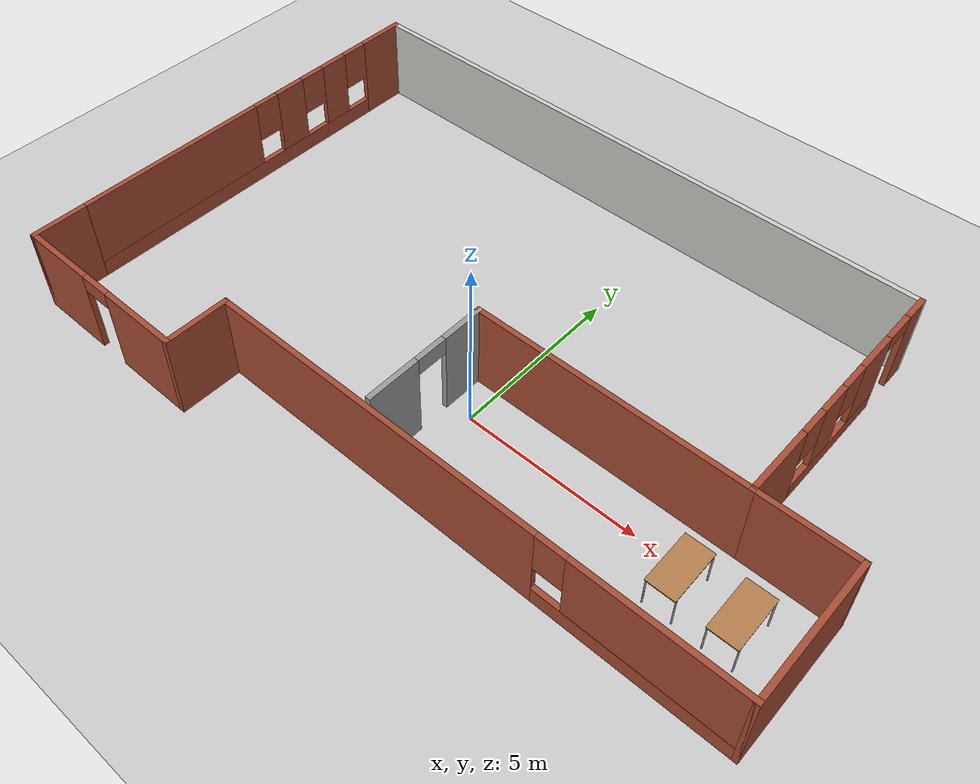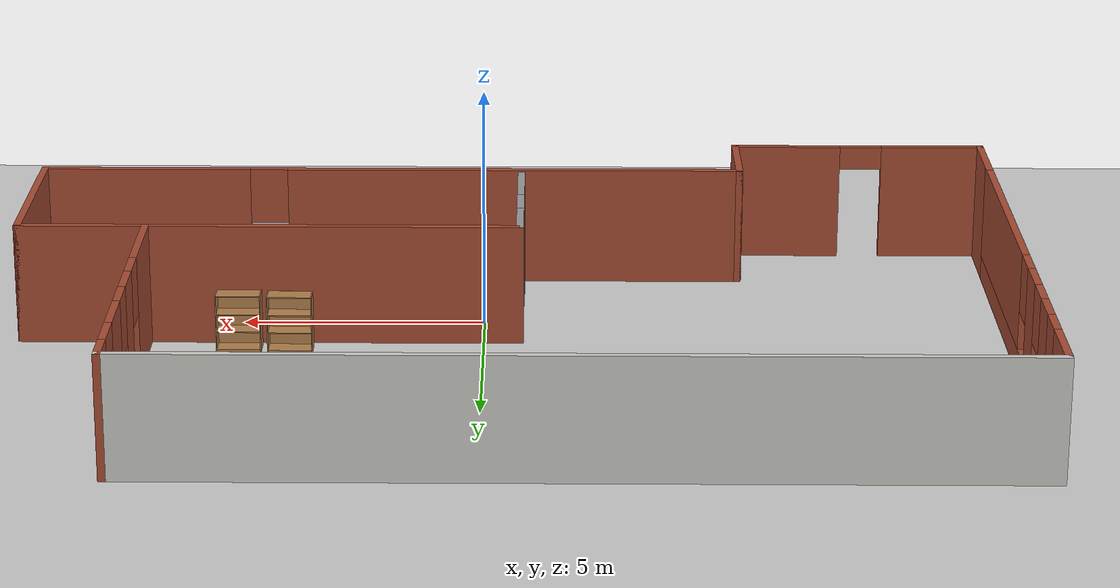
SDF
<sdf version="1.6">
 <world name="default">
  <model name="ground_plane">
   <static>1</static>
   <link name="link">
    <collision name="collision">
     <geometry><plane><normal>0 0 1</normal><size>100 100</size></plane></geometry>
     <surface>
      <contact><collide_bitmask>65535</collide_bitmask></contact>
      <friction><ode><mu>100</mu><mu2>50</mu2></ode></friction>
     </surface>
    </collision>
    <visual name="visual">
     <cast_shadows>0</cast_shadows>
     <geometry><plane><normal>0 0 1</normal><size>100 100</size></plane></geometry>
     <material>
      <script><uri>file://media/materials/scripts/gazebo.material</uri><name>Gazebo/Grey</name></script>
     </material>
    </visual>
   </link>
  </model>
  <model name="model_0">
   <pose>-0.6336 1.95139 0 0 -0 0</pose>
   <link name="Wall_10">
    <pose>7.50018 2.8 0 0 -0 1.57075</pose>
    <visual name="Wall_10_Visual_0">
     <pose>-2.68442 0 1.25 0 -0 0</pose>
     <geometry><box><size>2.09065 0.15 2.5</size></box></geometry>
     <material>
      <script><uri>file://media/materials/scripts/gazebo.material</uri><name>Gazebo/Bricks</name></script>
      <ambient>0.435294 0.796078 0.67451 1</ambient>
     </material>
     <meta><layer>0</layer></meta>
    </visual>
    <collision name="Wall_10_Collision_0">
     <geometry><box><size>2.09065 0.15 2.5</size></box></geometry>
     <pose>-2.68442 0 1.25 0 -0 0</pose>
    </collision>
    <visual name="Wall_10_Visual_1">
     <pose>3.35058 0 1.25 0 -0 0</pose>
     <geometry><box><size>0.758336 0.15 2.5</size></box></geometry>
     <material>
      <script><uri>file://media/materials/scripts/gazebo.material</uri><name>Gazebo/Bricks</name></script>
      <ambient>0.435294 0.796078 0.67451 1</ambient>
     </material>
     <meta><layer>0</layer></meta>
    </visual>
    <collision name="Wall_10_Collision_1">
     <geometry><box><size>0.758336 0.15 2.5</size></box></geometry>
     <pose>3.35058 0 1.25 0 -0 0</pose>
    </collision>
    <visual name="Wall_10_Visual_2">
     <pose>0.216155 0 0.25 0 -0 0</pose>
     <geometry><box><size>3.71051 0.15 0.5</size></box></geometry>
     <material>
      <script><uri>file://media/materials/scripts/gazebo.material</uri><name>Gazebo/Bricks</name></script>
      <ambient>0.435294 0.796078 0.67451 1</ambient>
     </material>
     <meta><layer>0</layer></meta>
    </visual>
    <collision name="Wall_10_Collision_2">
     <geometry><box><size>3.71051 0.15 0.5</size></box></geometry>
     <pose>0.216155 0 0.25 0 -0 0</pose>
    </collision>
    <visual name="Wall_10_Visual_3">
     <pose>-0.378984 0 1.5 0 -0 0</pose>
     <geometry><box><size>0.920234 0.15 2</size></box></geometry>
     <material>
      <script><uri>file://media/materials/scripts/gazebo.material</uri><name>Gazebo/Bricks</name></script>
      <ambient>0.435294 0.796078 0.67451 1</ambient>
     </material>
     <meta><layer>0</layer></meta>
    </visual>
    <collision name="Wall_10_Collision_3">
     <geometry><box><size>0.920234 0.15 2</size></box></geometry>
     <pose>-0.378984 0 1.5 0 -0 0</pose>
    </collision>
    <visual name="Wall_10_Visual_4">
     <pose>1.47627 0 1.5 0 -0 0</pose>
     <geometry><box><size>1.19028 0.15 2</size></box></geometry>
     <material>
      <script><uri>file://media/materials/scripts/gazebo.material</uri><name>Gazebo/Bricks</name></script>
      <ambient>0.435294 0.796078 0.67451 1</ambient>
     </material>
     <meta><layer>0</layer></meta>
    </visual>
    <collision name="Wall_10_Collision_4">
     <geometry><box><size>1.19028 0.15 2</size></box></geometry>
     <pose>1.47627 0 1.5 0 -0 0</pose>
    </collision>
    <visual name="Wall_10_Visual_5">
     <pose>-1.2391 0 1.9 0 -0 0</pose>
     <geometry><box><size>0.8 0.15 1.2</size></box></geometry>
     <material>
      <script><uri>file://media/materials/scripts/gazebo.material</uri><name>Gazebo/Bricks</name></script>
      <ambient>0.435294 0.796078 0.67451 1</ambient>
     </material>
     <meta><layer>0</layer></meta>
    </visual>
    <collision name="Wall_10_Collision_5">
     <geometry><box><size>0.8 0.15 1.2</size></box></geometry>
     <pose>-1.2391 0 1.9 0 -0 0</pose>
    </collision>
    <visual name="Wall_10_Visual_6">
     <pose>0.481133 0 1.9 0 -0 0</pose>
     <geometry><box><size>0.8 0.15 1.2</size></box></geometry>
     <material>
      <script><uri>file://media/materials/scripts/gazebo.material</uri><name>Gazebo/Bricks</name></script>
      <ambient>0.435294 0.796078 0.67451 1</ambient>
     </material>
     <meta><layer>0</layer></meta>
    </visual>
    <collision name="Wall_10_Collision_6">
     <geometry><box><size>0.8 0.15 1.2</size></box></geometry>
     <pose>0.481133 0 1.9 0 -0 0</pose>
    </collision>
    <visual name="Wall_10_Visual_7">
     <pose>2.52141 0 2.25 0 -0 0</pose>
     <geometry><box><size>0.9 0.15 0.5</size></box></geometry>
     <material>
      <script><uri>file://media/materials/scripts/gazebo.material</uri><name>Gazebo/Bricks</name></script>
      <ambient>0.435294 0.796078 0.67451 1</ambient>
     </material>
     <meta><layer>0</layer></meta>
    </visual>
    <collision name="Wall_10_Collision_7">
     <geometry><box><size>0.9 0.15 0.5</size></box></geometry>
     <pose>2.52141 0 2.25 0 -0 0</pose>
    </collision>
   </link>
   <link name="Wall_11">
    <collision name="Wall_11_Collision">
     <geometry><box><size>17.75 0.15 2.5</size></box></geometry>
     <pose>0 0 1.25 0 -0 0</pose>
    </collision>
    <visual name="Wall_11_Visual">
     <pose>0 0 1.25 0 -0 0</pose>
     <geometry><box><size>17.75 0.15 2.5</size></box></geometry>
     <material>
      <script><uri>file://media/materials/scripts/gazebo.material</uri><name>Gazebo/CeilingTiled</name></script>
      <ambient>0.435294 0.796078 0.67451 1</ambient>
     </material>
     <meta><layer>0</layer></meta>
    </visual>
    <pose>-1.29964 6.45474 0 0 -0 3.14159</pose>
   </link>
   <link name="Wall_12">
    <pose>-10.0998 0.799998 0 0 0 -1.57083</pose>
    <visual name="Wall_12_Visual_0">
     <pose>-4.98376 0 1.25 0 -0 0</pose>
     <geometry><box><size>1.49197 0.15 2.5</size></box></geometry>
     <material>
      <script><uri>file://media/materials/scripts/gazebo.material</uri><name>Gazebo/Bricks</name></script>
      <ambient>1 1 1 1</ambient>
     </material>
     <meta><layer>0</layer></meta>
    </visual>
    <collision name="Wall_12_Collision_0">
     <geometry><box><size>1.49197 0.15 2.5</size></box></geometry>
     <pose>-4.98376 0 1.25 0 -0 0</pose>
    </collision>
    <visual name="Wall_12_Visual_1">
     <pose>0.745985 0 0.25 0 -0 0</pose>
     <geometry><box><size>9.96752 0.15 0.5</size></box></geometry>
     <material>
      <script><uri>file://media/materials/scripts/gazebo.material</uri><name>Gazebo/Bricks</name></script>
      <ambient>1 1 1 1</ambient>
     </material>
     <meta><layer>0</layer></meta>
    </visual>
    <collision name="Wall_12_Collision_1">
     <geometry><box><size>9.96752 0.15 0.5</size></box></geometry>
     <pose>0.745985 0 0.25 0 -0 0</pose>
    </collision>
    <visual name="Wall_12_Visual_2">
     <pose>-2.99602 0 1.5 0 -0 0</pose>
     <geometry><box><size>0.88351 0.15 2</size></box></geometry>
     <material>
      <script><uri>file://media/materials/scripts/gazebo.material</uri><name>Gazebo/Bricks</name></script>
      <ambient>1 1 1 1</ambient>
     </material>
     <meta><layer>0</layer></meta>
    </visual>
    <collision name="Wall_12_Collision_2">
     <geometry><box><size>0.88351 0.15 2</size></box></geometry>
     <pose>-2.99602 0 1.5 0 -0 0</pose>
    </collision>
    <visual name="Wall_12_Visual_3">
     <pose>-1.27243 0 1.5 0 -0 0</pose>
     <geometry><box><size>0.963678 0.15 2</size></box></geometry>
     <material>
      <script><uri>file://media/materials/scripts/gazebo.material</uri><name>Gazebo/Bricks</name></script>
      <ambient>1 1 1 1</ambient>
     </material>
     <meta><layer>0</layer></meta>
    </visual>
    <collision name="Wall_12_Collision_3">
     <geometry><box><size>0.963678 0.15 2</size></box></geometry>
     <pose>-1.27243 0 1.5 0 -0 0</pose>
    </collision>
    <visual name="Wall_12_Visual_4">
     <pose>2.86958 0 1.5 0 -0 0</pose>
     <geometry><box><size>5.72034 0.15 2</size></box></geometry>
     <material>
      <script><uri>file://media/materials/scripts/gazebo.material</uri><name>Gazebo/Bricks</name></script>
      <ambient>1 1 1 1</ambient>
     </material>
     <meta><layer>0</layer></meta>
    </visual>
    <collision name="Wall_12_Collision_4">
     <geometry><box><size>5.72034 0.15 2</size></box></geometry>
     <pose>2.86958 0 1.5 0 -0 0</pose>
    </collision>
    <visual name="Wall_12_Visual_5">
     <pose>-3.83778 0 1.9 0 -0 0</pose>
     <geometry><box><size>0.8 0.15 1.2</size></box></geometry>
     <material>
      <script><uri>file://media/materials/scripts/gazebo.material</uri><name>Gazebo/Bricks</name></script>
      <ambient>1 1 1 1</ambient>
     </material>
     <meta><layer>0</layer></meta>
    </visual>
    <collision name="Wall_12_Collision_5">
     <geometry><box><size>0.8 0.15 1.2</size></box></geometry>
     <pose>-3.83778 0 1.9 0 -0 0</pose>
    </collision>
    <visual name="Wall_12_Visual_6">
     <pose>-2.15427 0 1.9 0 -0 0</pose>
     <geometry><box><size>0.8 0.15 1.2</size></box></geometry>
     <material>
      <script><uri>file://media/materials/scripts/gazebo.material</uri><name>Gazebo/Bricks</name></script>
      <ambient>1 1 1 1</ambient>
     </material>
     <meta><layer>0</layer></meta>
    </visual>
    <collision name="Wall_12_Collision_6">
     <geometry><box><size>0.8 0.15 1.2</size></box></geometry>
     <pose>-2.15427 0 1.9 0 -0 0</pose>
    </collision>
    <visual name="Wall_12_Visual_7">
     <pose>-0.390589 0 1.9 0 -0 0</pose>
     <geometry><box><size>0.8 0.15 1.2</size></box></geometry>
     <material>
      <script><uri>file://media/materials/scripts/gazebo.material</uri><name>Gazebo/Bricks</name></script>
      <ambient>1 1 1 1</ambient>
     </material>
     <meta><layer>0</layer></meta>
    </visual>
    <collision name="Wall_12_Collision_7">
     <geometry><box><size>0.8 0.15 1.2</size></box></geometry>
     <pose>-0.390589 0 1.9 0 -0 0</pose>
    </collision>
   </link>
   <link name="Wall_13">
    <collision name="Wall_13_Collision">
     <geometry><box><size>1.75 0.15 2.5</size></box></geometry>
     <pose>0 0 1.25 0 -0 0</pose>
    </collision>
    <visual name="Wall_13_Visual">
     <pose>0 0 1.25 0 -0 0</pose>
     <geometry><box><size>1.75 0.15 2.5</size></box></geometry>
     <material>
      <script><uri>file://media/materials/scripts/gazebo.material</uri><name>Gazebo/Bricks</name></script>
      <ambient>1 1 1 1</ambient>
     </material>
     <meta><layer>0</layer></meta>
    </visual>
    <pose>-10.1 -5.65475 0 0 0 -1.5708</pose>
   </link>
   <link name="Wall_14">
    <pose>-7.425 -6.45475 0 0 -0 0</pose>
    <visual name="Wall_14_Visual_0">
     <pose>-1.63288 0 1.25 0 -0 0</pose>
     <geometry><box><size>2.23424 0.15 2.5</size></box></geometry>
     <material>
      <script><uri>file://media/materials/scripts/gazebo.material</uri><name>Gazebo/Bricks</name></script>
      <ambient>1 1 1 1</ambient>
     </material>
     <meta><layer>0</layer></meta>
    </visual>
    <collision name="Wall_14_Collision_0">
     <geometry><box><size>2.23424 0.15 2.5</size></box></geometry>
     <pose>-1.63288 0 1.25 0 -0 0</pose>
    </collision>
    <visual name="Wall_14_Visual_1">
     <pose>1.56712 0 1.25 0 -0 0</pose>
     <geometry><box><size>2.36576 0.15 2.5</size></box></geometry>
     <material>
      <script><uri>file://media/materials/scripts/gazebo.material</uri><name>Gazebo/Bricks</name></script>
      <ambient>1 1 1 1</ambient>
     </material>
     <meta><layer>0</layer></meta>
    </visual>
    <collision name="Wall_14_Collision_1">
     <geometry><box><size>2.36576 0.15 2.5</size></box></geometry>
     <pose>1.56712 0 1.25 0 -0 0</pose>
    </collision>
    <visual name="Wall_14_Visual_2">
     <pose>-0.065763 0 2.25 0 -0 0</pose>
     <geometry><box><size>0.9 0.15 0.5</size></box></geometry>
     <material>
      <script><uri>file://media/materials/scripts/gazebo.material</uri><name>Gazebo/Bricks</name></script>
      <ambient>1 1 1 1</ambient>
     </material>
     <meta><layer>0</layer></meta>
    </visual>
    <collision name="Wall_14_Collision_2">
     <geometry><box><size>0.9 0.15 0.5</size></box></geometry>
     <pose>-0.065763 0 2.25 0 -0 0</pose>
    </collision>
   </link>
   <link name="Wall_15">
    <collision name="Wall_15_Collision">
     <geometry><box><size>1.9 0.15 2.5</size></box></geometry>
     <pose>0 0 1.25 0 -0 0</pose>
    </collision>
    <visual name="Wall_15_Visual">
     <pose>0 0 1.25 0 -0 0</pose>
     <geometry><box><size>1.9 0.15 2.5</size></box></geometry>
     <material>
      <script><uri>file://media/materials/scripts/gazebo.material</uri><name>Gazebo/Bricks</name></script>
      <ambient>1 1 1 1</ambient>
     </material>
     <meta><layer>0</layer></meta>
    </visual>
    <pose>-4.75 -5.57975 0 0 -0 1.5708</pose>
   </link>
   <link name="Wall_19">
    <collision name="Wall_19_Collision">
     <geometry><box><size>7.75 0.15 2.5</size></box></geometry>
     <pose>0 0 1.25 0 -0 0</pose>
    </collision>
    <visual name="Wall_19_Visual">
     <pose>0 0 1.25 0 -0 0</pose>
     <geometry><box><size>7.75 0.15 2.5</size></box></geometry>
     <material>
      <script><uri>file://media/materials/scripts/gazebo.material</uri><name>Gazebo/Bricks</name></script>
      <ambient>0.435294 0.796078 0.67451 1</ambient>
     </material>
     <meta><layer>0</layer></meta>
    </visual>
    <pose>3.7 -0.854748 0 0 -0 3.14159</pose>
   </link>
   <link name="Wall_20">
    <pose>-0.099999 -2.65475 0 0 0 -1.5708</pose>
    <visual name="Wall_20_Visual_0">
     <pose>-1.22543 0 1.25 0 -0 0</pose>
     <geometry><box><size>1.29914 0.15 2.5</size></box></geometry>
     <material>
      <script><uri>file://media/materials/scripts/gazebo.material</uri><name>Gazebo/Grey</name></script>
      <ambient>1 1 1 1</ambient>
     </material>
     <meta><layer>0</layer></meta>
    </visual>
    <collision name="Wall_20_Collision_0">
     <geometry><box><size>1.29914 0.15 2.5</size></box></geometry>
     <pose>-1.22543 0 1.25 0 -0 0</pose>
    </collision>
    <visual name="Wall_20_Visual_1">
     <pose>1.09957 0 1.25 0 -0 0</pose>
     <geometry><box><size>1.55086 0.15 2.5</size></box></geometry>
     <material>
      <script><uri>file://media/materials/scripts/gazebo.material</uri><name>Gazebo/Grey</name></script>
      <ambient>1 1 1 1</ambient>
     </material>
     <meta><layer>0</layer></meta>
    </visual>
    <collision name="Wall_20_Collision_1">
     <geometry><box><size>1.55086 0.15 2.5</size></box></geometry>
     <pose>1.09957 0 1.25 0 -0 0</pose>
    </collision>
    <visual name="Wall_20_Visual_2">
     <pose>-0.125864 0 2.25 0 -0 0</pose>
     <geometry><box><size>0.9 0.15 0.5</size></box></geometry>
     <material>
      <script><uri>file://media/materials/scripts/gazebo.material</uri><name>Gazebo/Grey</name></script>
      <ambient>1 1 1 1</ambient>
     </material>
     <meta><layer>0</layer></meta>
    </visual>
    <collision name="Wall_20_Collision_2">
     <geometry><box><size>0.9 0.15 0.5</size></box></geometry>
     <pose>-0.125864 0 2.25 0 -0 0</pose>
    </collision>
   </link>
   <link name="Wall_7">
    <pose>2.675 -4.70475 0 0 -0 0</pose>
    <visual name="Wall_7_Visual_0">
     <pose>-2.63677 0 1.25 0 -0 0</pose>
     <geometry><box><size>9.72647 0.15 2.5</size></box></geometry>
     <material>
      <script><uri>file://media/materials/scripts/gazebo.material</uri><name>Gazebo/Bricks</name></script>
      <ambient>0.435294 0.796078 0.67451 1</ambient>
     </material>
     <meta><layer>0</layer></meta>
    </visual>
    <collision name="Wall_7_Collision_0">
     <geometry><box><size>9.72647 0.15 2.5</size></box></geometry>
     <pose>-2.63677 0 1.25 0 -0 0</pose>
    </collision>
    <visual name="Wall_7_Visual_1">
     <pose>4.86323 0 0.25 0 -0 0</pose>
     <geometry><box><size>5.27353 0.15 0.5</size></box></geometry>
     <material>
      <script><uri>file://media/materials/scripts/gazebo.material</uri><name>Gazebo/Bricks</name></script>
      <ambient>0.435294 0.796078 0.67451 1</ambient>
     </material>
     <meta><layer>0</layer></meta>
    </visual>
    <collision name="Wall_7_Collision_1">
     <geometry><box><size>5.27353 0.15 0.5</size></box></geometry>
     <pose>4.86323 0 0.25 0 -0 0</pose>
    </collision>
    <visual name="Wall_7_Visual_2">
     <pose>5.26323 0 1.5 0 -0 0</pose>
     <geometry><box><size>4.47353 0.15 2</size></box></geometry>
     <material>
      <script><uri>file://media/materials/scripts/gazebo.material</uri><name>Gazebo/Bricks</name></script>
      <ambient>0.435294 0.796078 0.67451 1</ambient>
     </material>
     <meta><layer>0</layer></meta>
    </visual>
    <collision name="Wall_7_Collision_2">
     <geometry><box><size>4.47353 0.15 2</size></box></geometry>
     <pose>5.26323 0 1.5 0 -0 0</pose>
    </collision>
    <visual name="Wall_7_Visual_3">
     <pose>2.62647 0 1.9 0 -0 0</pose>
     <geometry><box><size>0.8 0.15 1.2</size></box></geometry>
     <material>
      <script><uri>file://media/materials/scripts/gazebo.material</uri><name>Gazebo/Bricks</name></script>
      <ambient>0.435294 0.796078 0.67451 1</ambient>
     </material>
     <meta><layer>0</layer></meta>
    </visual>
    <collision name="Wall_7_Collision_3">
     <geometry><box><size>0.8 0.15 1.2</size></box></geometry>
     <pose>2.62647 0 1.9 0 -0 0</pose>
    </collision>
   </link>
   <link name="Wall_8">
    <collision name="Wall_8_Collision">
     <geometry><box><size>4 0.15 2.5</size></box></geometry>
     <pose>0 0 1.25 0 -0 0</pose>
    </collision>
    <visual name="Wall_8_Visual">
     <pose>0 0 1.25 0 -0 0</pose>
     <geometry><box><size>4 0.15 2.5</size></box></geometry>
     <material>
      <script><uri>file://media/materials/scripts/gazebo.material</uri><name>Gazebo/Bricks</name></script>
      <ambient>1 1 1 1</ambient>
     </material>
     <meta><layer>0</layer></meta>
    </visual>
    <pose>10.1 -2.77975 0 0 -0 1.5708</pose>
   </link>
   <link name="Wall_9">
    <collision name="Wall_9_Collision">
     <geometry><box><size>2.75 0.15 2.5</size></box></geometry>
     <pose>0 0 1.25 0 -0 0</pose>
    </collision>
    <visual name="Wall_9_Visual">
     <pose>0 0 1.25 0 -0 0</pose>
     <geometry><box><size>2.75 0.15 2.5</size></box></geometry>
     <material>
      <script><uri>file://media/materials/scripts/gazebo.material</uri><name>Gazebo/Bricks</name></script>
      <ambient>1 1 1 1</ambient>
     </material>
     <meta><layer>0</layer></meta>
    </visual>
    <pose>8.8 -0.854748 0 0 -0 3.14159</pose>
   </link>
   <static>1</static>
  </model>
  <model name="bookshelf">
   <static>1</static>
   <link name="link">
    <inertial><mass>1</mass></inertial>
    <collision name="back">
     <pose>0 0.005 0.6 0 -0 0</pose>
     <geometry><box><size>0.9 0.01 1.2</size></box></geometry>
    </collision>
    <visual name="visual1">
     <pose>0 0.005 0.6 0 -0 0</pose>
     <geometry><box><size>0.9 0.01 1.2</size></box></geometry>
     <material>
      <script><uri>file://media/materials/scripts/gazebo.material</uri><name>Gazebo/Wood</name></script>
     </material>
    </visual>
    <collision name="left_side">
     <pose>0.45 -0.195 0.6 0 -0 0</pose>
     <geometry><box><size>0.02 0.4 1.2</size></box></geometry>
    </collision>
    <visual name="visual2">
     <pose>0.45 -0.195 0.6 0 -0 0</pose>
     <geometry><box><size>0.02 0.4 1.2</size></box></geometry>
     <material>
      <script><uri>file://media/materials/scripts/gazebo.material</uri><name>Gazebo/Wood</name></script>
     </material>
    </visual>
    <collision name="right_side">
     <pose>-0.45 -0.195 0.6 0 -0 0</pose>
     <geometry><box><size>0.02 0.4 1.2</size></box></geometry>
    </collision>
    <visual name="visual3">
     <pose>-0.45 -0.195 0.6 0 -0 0</pose>
     <geometry><box><size>0.02 0.4 1.2</size></box></geometry>
     <material>
      <script><uri>file://media/materials/scripts/gazebo.material</uri><name>Gazebo/Wood</name></script>
     </material>
    </visual>
    <collision name="bottom">
     <pose>0 -0.195 0.03 0 -0 0</pose>
     <geometry><box><size>0.88 0.4 0.06</size></box></geometry>
    </collision>
    <visual name="visual4">
     <pose>0 -0.195 0.03 0 -0 0</pose>
     <geometry><box><size>0.88 0.4 0.06</size></box></geometry>
     <material>
      <script><uri>file://media/materials/scripts/gazebo.material</uri><name>Gazebo/Wood</name></script>
     </material>
    </visual>
    <collision name="top">
     <pose>0 -0.195 1.19 0 -0 0</pose>
     <geometry><box><size>0.88 0.4 0.02</size></box></geometry>
    </collision>
    <visual name="visual5">
     <pose>0 -0.195 1.19 0 -0 0</pose>
     <geometry><box><size>0.88 0.4 0.02</size></box></geometry>
     <material>
      <script><uri>file://media/materials/scripts/gazebo.material</uri><name>Gazebo/Wood</name></script>
     </material>
    </visual>
    <collision name="low_shelf">
     <pose>0 -0.195 0.43 0 -0 0</pose>
     <geometry><box><size>0.88 0.4 0.02</size></box></geometry>
    </collision>
    <visual name="visual6">
     <pose>0 -0.195 0.43 0 -0 0</pose>
     <geometry><box><size>0.88 0.4 0.02</size></box></geometry>
     <material>
      <script><uri>file://media/materials/scripts/gazebo.material</uri><name>Gazebo/Wood</name></script>
     </material>
    </visual>
    <collision name="high_shelf">
     <pose>0 -0.195 0.8 0 -0 0</pose>
     <geometry><box><size>0.88 0.4 0.02</size></box></geometry>
    </collision>
    <visual name="visual7">
     <pose>0 -0.195 0.8 0 -0 0</pose>
     <geometry><box><size>0.88 0.4 0.02</size></box></geometry>
     <material>
      <script><uri>file://media/materials/scripts/gazebo.material</uri><name>Gazebo/Wood</name></script>
     </material>
    </visual>
   </link>
   <pose>4.97014 1.33847 0 0 -0 3.13189</pose>
  </model>
  <model name="bookshelf_clone">
   <static>1</static>
   <link name="link">
    <inertial><mass>1</mass></inertial>
    <collision name="back">
     <pose>0 0.005 0.6 0 -0 0</pose>
     <geometry><box><size>0.9 0.01 1.2</size></box></geometry>
    </collision>
    <visual name="visual1">
     <pose>0 0.005 0.6 0 -0 0</pose>
     <geometry><box><size>0.9 0.01 1.2</size></box></geometry>
     <material>
      <script><uri>file://media/materials/scripts/gazebo.material</uri><name>Gazebo/Wood</name></script>
     </material>
    </visual>
    <collision name="left_side">
     <pose>0.45 -0.195 0.6 0 -0 0</pose>
     <geometry><box><size>0.02 0.4 1.2</size></box></geometry>
    </collision>
    <visual name="visual2">
     <pose>0.45 -0.195 0.6 0 -0 0</pose>
     <geometry><box><size>0.02 0.4 1.2</size></box></geometry>
     <material>
      <script><uri>file://media/materials/scripts/gazebo.material</uri><name>Gazebo/Wood</name></script>
     </material>
    </visual>
    <collision name="right_side">
     <pose>-0.45 -0.195 0.6 0 -0 0</pose>
     <geometry><box><size>0.02 0.4 1.2</size></box></geometry>
    </collision>
    <visual name="visual3">
     <pose>-0.45 -0.195 0.6 0 -0 0</pose>
     <geometry><box><size>0.02 0.4 1.2</size></box></geometry>
     <material>
      <script><uri>file://media/materials/scripts/gazebo.material</uri><name>Gazebo/Wood</name></script>
     </material>
    </visual>
    <collision name="bottom">
     <pose>0 -0.195 0.03 0 -0 0</pose>
     <geometry><box><size>0.88 0.4 0.06</size></box></geometry>
    </collision>
    <visual name="visual4">
     <pose>0 -0.195 0.03 0 -0 0</pose>
     <geometry><box><size>0.88 0.4 0.06</size></box></geometry>
     <material>
      <script><uri>file://media/materials/scripts/gazebo.material</uri><name>Gazebo/Wood</name></script>
     </material>
    </visual>
    <collision name="top">
     <pose>0 -0.195 1.19 0 -0 0</pose>
     <geometry><box><size>0.88 0.4 0.02</size></box></geometry>
    </collision>
    <visual name="visual5">
     <pose>0 -0.195 1.19 0 -0 0</pose>
     <geometry><box><size>0.88 0.4 0.02</size></box></geometry>
     <material>
      <script><uri>file://media/materials/scripts/gazebo.material</uri><name>Gazebo/Wood</name></script>
     </material>
    </visual>
    <collision name="low_shelf">
     <pose>0 -0.195 0.43 0 -0 0</pose>
     <geometry><box><size>0.88 0.4 0.02</size></box></geometry>
    </collision>
    <visual name="visual6">
     <pose>0 -0.195 0.43 0 -0 0</pose>
     <geometry><box><size>0.88 0.4 0.02</size></box></geometry>
     <material>
      <script><uri>file://media/materials/scripts/gazebo.material</uri><name>Gazebo/Wood</name></script>
     </material>
    </visual>
    <collision name="high_shelf">
     <pose>0 -0.195 0.8 0 -0 0</pose>
     <geometry><box><size>0.88 0.4 0.02</size></box></geometry>
    </collision>
    <visual name="visual7">
     <pose>0 -0.195 0.8 0 -0 0</pose>
     <geometry><box><size>0.88 0.4 0.02</size></box></geometry>
     <material>
      <script><uri>file://media/materials/scripts/gazebo.material</uri><name>Gazebo/Wood</name></script>
     </material>
    </visual>
   </link>
   <pose>3.92518 1.39004 0 0 -0 3.13189</pose>
  </model>
  <model name="table_clone_clone_clone">
   <static>1</static>
   <link name="link">
    <collision name="surface">
     <pose>0 0 1 0 -0 0</pose>
     <geometry><box><size>1.5 0.8 0.03</size></box></geometry>
     <surface><friction><ode><mu>0.6</mu><mu2>0.6</mu2></ode></friction></surface>
    </collision>
    <visual name="visual1">
     <pose>0 0 1 0 -0 0</pose>
     <geometry><box><size>1.5 0.8 0.03</size></box></geometry>
     <material>
      <script><uri>file://media/materials/scripts/gazebo.material</uri><name>Gazebo/Wood</name></script>
     </material>
    </visual>
    <collision name="front_left_leg">
     <pose>0.68 0.38 0.5 0 -0 0</pose>
     <geometry><cylinder><radius>0.02</radius><length>1</length></cylinder></geometry>
    </collision>
    <visual name="front_left_leg">
     <pose>0.68 0.38 0.5 0 -0 0</pose>
     <geometry><cylinder><radius>0.02</radius><length>1</length></cylinder></geometry>
     <material>
      <script><uri>file://media/materials/scripts/gazebo.material</uri><name>Gazebo/Grey</name></script>
     </material>
    </visual>
    <collision name="front_right_leg">
     <pose>0.68 -0.38 0.5 0 -0 0</pose>
     <geometry><cylinder><radius>0.02</radius><length>1</length></cylinder></geometry>
    </collision>
    <visual name="front_right_leg">
     <pose>0.68 -0.38 0.5 0 -0 0</pose>
     <geometry><cylinder><radius>0.02</radius><length>1</length></cylinder></geometry>
     <material>
      <script><uri>file://media/materials/scripts/gazebo.material</uri><name>Gazebo/Grey</name></script>
     </material>
    </visual>
    <collision name="back_right_leg">
     <pose>-0.68 -0.38 0.5 0 -0 0</pose>
     <geometry><cylinder><radius>0.02</radius><length>1</length></cylinder></geometry>
    </collision>
    <visual name="back_right_leg">
     <pose>-0.68 -0.38 0.5 0 -0 0</pose>
     <geometry><cylinder><radius>0.02</radius><length>1</length></cylinder></geometry>
     <material>
      <script><uri>file://media/materials/scripts/gazebo.material</uri><name>Gazebo/Grey</name></script>
     </material>
    </visual>
    <collision name="back_left_leg">
     <pose>-0.68 0.38 0.5 0 -0 0</pose>
     <geometry><cylinder><radius>0.02</radius><length>1</length></cylinder></geometry>
    </collision>
    <visual name="back_left_leg">
     <pose>-0.68 0.38 0.5 0 -0 0</pose>
     <geometry><cylinder><radius>0.02</radius><length>1</length></cylinder></geometry>
     <material>
      <script><uri>file://media/materials/scripts/gazebo.material</uri><name>Gazebo/Grey</name></script>
     </material>
    </visual>
   </link>
   <pose>8.00683 -0.598844 0.051294 0.010581 -0.023783 1.5805</pose>
  </model>
  <model name="table_clone_clone_clone_clone">
   <static>1</static>
   <link name="link">
    <collision name="surface">
     <pose>0 0 1 0 -0 0</pose>
     <geometry><box><size>1.5 0.8 0.03</size></box></geometry>
     <surface><friction><ode><mu>0.6</mu><mu2>0.6</mu2></ode></friction></surface>
    </collision>
    <visual name="visual1">
     <pose>0 0 1 0 -0 0</pose>
     <geometry><box><size>1.5 0.8 0.03</size></box></geometry>
     <material>
      <script><uri>file://media/materials/scripts/gazebo.material</uri><name>Gazebo/Wood</name></script>
     </material>
    </visual>
    <collision name="front_left_leg">
     <pose>0.68 0.38 0.5 0 -0 0</pose>
     <geometry><cylinder><radius>0.02</radius><length>1</length></cylinder></geometry>
    </collision>
    <visual name="front_left_leg">
     <pose>0.68 0.38 0.5 0 -0 0</pose>
     <geometry><cylinder><radius>0.02</radius><length>1</length></cylinder></geometry>
     <material>
      <script><uri>file://media/materials/scripts/gazebo.material</uri><name>Gazebo/Grey</name></script>
     </material>
    </visual>
    <collision name="front_right_leg">
     <pose>0.68 -0.38 0.5 0 -0 0</pose>
     <geometry><cylinder><radius>0.02</radius><length>1</length></cylinder></geometry>
    </collision>
    <visual name="front_right_leg">
     <pose>0.68 -0.38 0.5 0 -0 0</pose>
     <geometry><cylinder><radius>0.02</radius><length>1</length></cylinder></geometry>
     <material>
      <script><uri>file://media/materials/scripts/gazebo.material</uri><name>Gazebo/Grey</name></script>
     </material>
    </visual>
    <collision name="back_right_leg">
     <pose>-0.68 -0.38 0.5 0 -0 0</pose>
     <geometry><cylinder><radius>0.02</radius><length>1</length></cylinder></geometry>
    </collision>
    <visual name="back_right_leg">
     <pose>-0.68 -0.38 0.5 0 -0 0</pose>
     <geometry><cylinder><radius>0.02</radius><length>1</length></cylinder></geometry>
     <material>
      <script><uri>file://media/materials/scripts/gazebo.material</uri><name>Gazebo/Grey</name></script>
     </material>
    </visual>
    <collision name="back_left_leg">
     <pose>-0.68 0.38 0.5 0 -0 0</pose>
     <geometry><cylinder><radius>0.02</radius><length>1</length></cylinder></geometry>
    </collision>
    <visual name="back_left_leg">
     <pose>-0.68 0.38 0.5 0 -0 0</pose>
     <geometry><cylinder><radius>0.02</radius><length>1</length></cylinder></geometry>
     <material>
      <script><uri>file://media/materials/scripts/gazebo.material</uri><name>Gazebo/Grey</name></script>
     </material>
    </visual>
   </link>
   <pose>6.44495 -0.555808 0.051294 0.010581 -0.023783 1.5805</pose>
  </model>
 </world>
</sdf>
